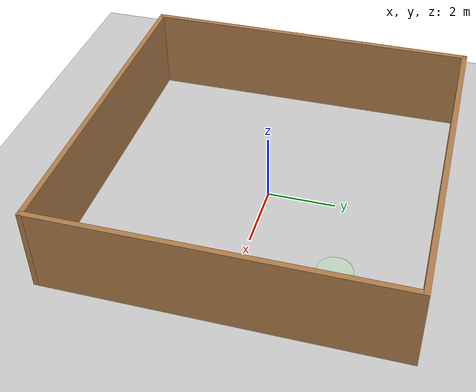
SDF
<?xml version="1.0" ?>
<sdf version='1.6'>
  <world name='default'>
    <light name='sun' type='directional'>
      <cast_shadows>1</cast_shadows>
      <pose frame=''>0 0 10 0 -0 0</pose>
      <diffuse>0.8 0.8 0.8 1</diffuse>
      <specular>0.2 0.2 0.2 1</specular>
      <attenuation>
        <range>1000</range>
        <constant>0.9</constant>
        <linear>0.01</linear>
        <quadratic>0.001</quadratic>
      </attenuation>
      <direction>-0.5 0.1 -0.9</direction>
    </light>
    <model name='ground_plane'>
      <static>1</static>
      <link name='link'>
        <collision name='collision'>
          <geometry>
            <plane>
              <normal>0 0 1</normal>
              <size>100 100</size>
            </plane>
          </geometry>
          <surface>
            <contact>
              <collide_bitmask>65535</collide_bitmask>
              <ode/>
            </contact>
            <friction>
              <ode>
                <mu>100</mu>
                <mu2>50</mu2>
              </ode>
              <torsional>
                <ode/>
              </torsional>
            </friction>
            <bounce/>
          </surface>
          <max_contacts>10</max_contacts>
        </collision>
        <visual name='visual'>
          <cast_shadows>0</cast_shadows>
          <geometry>
            <plane>
              <normal>0 0 1</normal>
              <size>100 100</size>
            </plane>
          </geometry>
          <material>
            <script>
              <uri>file://media/materials/scripts/gazebo.material</uri>
              <name>Gazebo/Grey</name>
            </script>
          </material>
        </visual>
        <self_collide>0</self_collide>
        <enable_wind>0</enable_wind>
        <kinematic>0</kinematic>
      </link>
    </model>
    <gravity>0 0 -9.8</gravity>
    <magnetic_field>6e-06 2.3e-05 -4.2e-05</magnetic_field>
    <atmosphere type='adiabatic'/>
    <physics name='default_physics' default='0' type='ode'>
      <max_step_size>0.001</max_step_size>
      <real_time_factor>1</real_time_factor>
      <real_time_update_rate>1000</real_time_update_rate>
    </physics>
    <scene>
      <ambient>0.4 0.4 0.4 1</ambient>
      <background>0.7 0.7 0.7 1</background>
      <shadows>1</shadows>
    </scene>
    <wind/>
    <spherical_coordinates>
      <surface_model>EARTH_WGS84</surface_model>
      <latitude_deg>0</latitude_deg>
      <longitude_deg>0</longitude_deg>
      <elevation>0</elevation>
      <heading_deg>0</heading_deg>
    </spherical_coordinates>
    <model name='empty_room_0'>
      <pose frame=''>0 0 0 0 -0 0</pose>
      <link name='Wall_15'>
        <collision name='Wall_15_Collision'>
          <geometry>
            <box>
              <size>10 0.15 2.5</size>
            </box>
          </geometry>
          <pose frame=''>0 0 1.25 0 -0 0</pose>
          <max_contacts>10</max_contacts>
          <surface>
            <contact>
              <ode/>
            </contact>
            <bounce/>
            <friction>
              <torsional>
                <ode/>
              </torsional>
              <ode/>
            </friction>
          </surface>
        </collision>
        <visual name='Wall_15_Visual'>
          <pose frame=''>0 0 1.25 0 -0 0</pose>
          <geometry>
            <box>
              <size>10 0.15 2.5</size>
            </box>
          </geometry>
          <material>
            <script>
              <uri>file://media/materials/scripts/gazebo.material</uri>
              <name>Gazebo/Wood</name>
            </script>
            <ambient>1 1 1 1</ambient>
          </material>
          <meta>
            <layer>0</layer>
          </meta>
        </visual>
        <pose frame=''>-4.925 0 0 0 -0 -1.5708</pose>
        <self_collide>0</self_collide>
        <enable_wind>0</enable_wind>
        <kinematic>0</kinematic>
      </link>
      <link name='Wall_16'>
        <collision name='Wall_16_Collision'>
          <geometry>
            <box>
              <size>10 0.15 2.5</size>
            </box>
          </geometry>
          <pose frame=''>0 0 1.25 0 -0 0</pose>
          <max_contacts>10</max_contacts>
          <surface>
            <contact>
              <ode/>
            </contact>
            <bounce/>
            <friction>
              <torsional>
                <ode/>
              </torsional>
              <ode/>
            </friction>
          </surface>
        </collision>
        <visual name='Wall_16_Visual'>
          <pose frame=''>0 0 1.25 0 -0 0</pose>
          <geometry>
            <box>
              <size>10 0.15 2.5</size>
            </box>
          </geometry>
          <material>
            <script>
              <uri>file://media/materials/scripts/gazebo.material</uri>
              <name>Gazebo/Wood</name>
            </script>
            <ambient>1 1 1 1</ambient>
          </material>
          <meta>
            <layer>0</layer>
          </meta>
        </visual>
        <pose frame=''>0 -4.925 0 0 -0 0</pose>
        <self_collide>0</self_collide>
        <enable_wind>0</enable_wind>
        <kinematic>0</kinematic>
      </link>
      <link name='Wall_18'>
        <collision name='Wall_18_Collision'>
          <geometry>
            <box>
              <size>10 0.15 2.5</size>
            </box>
          </geometry>
          <pose frame=''>0 0 1.25 0 -0 0</pose>
          <max_contacts>10</max_contacts>
          <surface>
            <contact>
              <ode/>
            </contact>
            <bounce/>
            <friction>
              <torsional>
                <ode/>
              </torsional>
              <ode/>
            </friction>
          </surface>
        </collision>
        <visual name='Wall_18_Visual'>
          <pose frame=''>0 0 1.25 0 -0 0</pose>
          <geometry>
            <box>
              <size>10 0.15 2.5</size>
            </box>
          </geometry>
          <material>
            <script>
              <uri>file://media/materials/scripts/gazebo.material</uri>
              <name>Gazebo/Wood</name>
            </script>
            <ambient>1 1 1 1</ambient>
          </material>
          <meta>
            <layer>0</layer>
          </meta>
        </visual>
        <pose frame=''>0 4.925 0 0 -0 0</pose>
        <self_collide>0</self_collide>
        <enable_wind>0</enable_wind>
        <kinematic>0</kinematic>
      </link>
      <link name='Wall_19'>
        <collision name='Wall_19_Collision'>
          <geometry>
            <box>
              <size>10 0.15 2.5</size>
            </box>
          </geometry>
          <pose frame=''>0 0 1.25 0 -0 0</pose>
          <max_contacts>10</max_contacts>
          <surface>
            <contact>
              <ode/>
            </contact>
            <bounce/>
            <friction>
              <torsional>
                <ode/>
              </torsional>
              <ode/>
            </friction>
          </surface>
        </collision>
        <visual name='Wall_19_Visual'>
          <pose frame=''>0 0 1.25 0 -0 0</pose>
          <geometry>
            <box>
              <size>10 0.15 2.5</size>
            </box>
          </geometry>
          <material>
            <script>
              <uri>file://media/materials/scripts/gazebo.material</uri>
              <name>Gazebo/Wood</name>
            </script>
            <ambient>1 1 1 1</ambient>
          </material>
          <meta>
            <layer>0</layer>
          </meta>
        </visual>
        <pose frame=''>4.925 0 0 0 -0 -1.5708</pose>
        <self_collide>0</self_collide>
        <enable_wind>0</enable_wind>
        <kinematic>0</kinematic>
      </link>
      <static>1</static>
    </model>
    <gui fullscreen='0'>
      <camera name='user_camera'>
        <pose frame=''>-0.596151 -0.725371 20.0875 0 1.53379 0.000222</pose>
        <view_controller>orbit</view_controller>
        <projection_type>perspective</projection_type>
      </camera>
    </gui>
    <model name='spotlight'>
      <link name='link'>
        <inertial>
          <mass>1</mass>
          <inertia>
            <ixx>0.145833</ixx>
            <ixy>0</ixy>
            <ixz>0</ixz>
            <iyy>0.145833</iyy>
            <iyz>0</iyz>
            <izz>0.125</izz>
          </inertia>
          <pose frame=''>0 0 0 0 -0 0</pose>
        </inertial>
        <self_collide>0</self_collide>
        <enable_wind>0</enable_wind>
        <kinematic>0</kinematic>
        <pose frame=''>0 0 0 0 -0 0</pose>
        <gravity>0</gravity>
        <visual name='visual'>
          <geometry>
            <cylinder>
              <radius>0.5</radius>
              <length>0.02</length>
            </cylinder>
          </geometry>
          <material>
            <script>
              <name>Gazebo/Grey</name>
              <uri>file://media/materials/scripts/gazebo.material</uri>
            </script>
            <shader type='pixel'>
              <normal_map>__default__</normal_map>
            </shader>
            <ambient>0.1 1 0.1 1</ambient>
            <diffuse>0.7 1 0.7 1</diffuse>
            <specular>0.01 0.31 0.01 1</specular>
            <emissive>0 0 0 1</emissive>
          </material>
          <pose frame=''>0 0 0 0 -0 0</pose>
          <transparency>0.7</transparency>
          <cast_shadows>1</cast_shadows>
        </visual>
      </link>
      <static>0</static>
      <allow_auto_disable>1</allow_auto_disable>
      <pose frame=''>2.5 2.5 0 3e-06 4e-06 -0</pose>
      <visibility_flags> 0 </visibility_flags>
    </model>
  </world>
</sdf>
